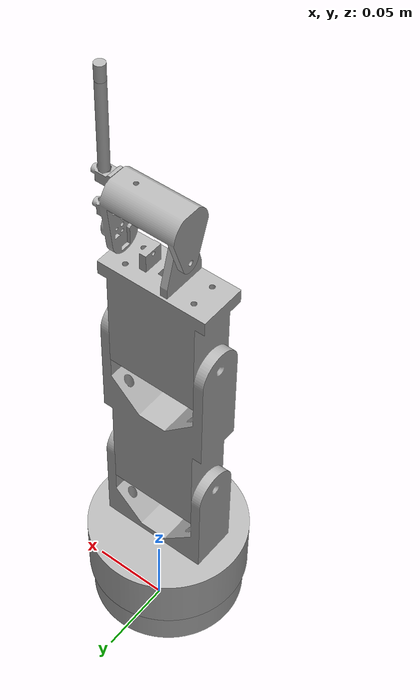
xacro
<?xml version="1.0"?>
<robot xmlns:xacro="http://www.ros.org/wiki/xacro" name="bob_joints">
    <xacro:arg name="initial_positions_file" default="initial_positions.yaml" />

    <!-- Import bob_joints urdf file -->
    <xacro:include filename="$(find bob_joints_description)/urdf/bob_joints.urdf" />

    <!-- Import control_xacro -->
    <xacro:include filename="bob_joints.ros2_control.xacro" />

    <xacro:bob_joints_ros2_control name="FakeSystem" initial_positions_file="$(arg initial_positions_file)"/>

</robot>

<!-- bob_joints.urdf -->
<!-- |    This document was autogenerated by xacro from bob_joints.xacro               | -->
<!-- |    EDITING THIS FILE BY HAND IS NOT RECOMMENDED                                 | -->
<robot name="bob_joints">
    <link name="world"/>
  <joint name="joint_w" type="fixed">
    <parent link="world"/>
    <child link="base_link"/>
  </joint>
  <material name="silver">
    <color rgba="0.700 0.700 0.700 1.000"/>
  </material>
  <transmission name="limb1_to_base_link_tran">
    <type>transmission_interface/SimpleTransmission</type>
    <joint name="limb1_to_base_link">
      <hardwareInterface>hardware_interface/EffortJointInterface</hardwareInterface>
    </joint>
    <actuator name="limb1_to_base_link_actr">
      <hardwareInterface>hardware_interface/EffortJointInterface</hardwareInterface>
      <mechanicalReduction>1</mechanicalReduction>
    </actuator>
  </transmission>
  <transmission name="limb2_to_limb1_tran">
    <type>transmission_interface/SimpleTransmission</type>
    <joint name="limb2_to_limb1">
      <hardwareInterface>hardware_interface/EffortJointInterface</hardwareInterface>
    </joint>
    <actuator name="limb2_to_limb1_actr">
      <hardwareInterface>hardware_interface/EffortJointInterface</hardwareInterface>
      <mechanicalReduction>1</mechanicalReduction>
    </actuator>
  </transmission>
  <transmission name="limb3_to_limb2_tran">
    <type>transmission_interface/SimpleTransmission</type>
    <joint name="limb3_to_limb2">
      <hardwareInterface>hardware_interface/EffortJointInterface</hardwareInterface>
    </joint>
    <actuator name="limb3_to_limb2_actr">
      <hardwareInterface>hardware_interface/EffortJointInterface</hardwareInterface>
      <mechanicalReduction>1</mechanicalReduction>
    </actuator>
  </transmission>
  <transmission name="limb4_to_limb3_tran">
    <type>transmission_interface/SimpleTransmission</type>
    <joint name="limb4_to_limb3">
      <hardwareInterface>hardware_interface/EffortJointInterface</hardwareInterface>
    </joint>
    <actuator name="limb4_to_limb3_actr">
      <hardwareInterface>hardware_interface/EffortJointInterface</hardwareInterface>
      <mechanicalReduction>1</mechanicalReduction>
    </actuator>
  </transmission>
  <transmission name="brush_to_limb4_tran">
    <type>transmission_interface/SimpleTransmission</type>
    <joint name="brush_to_limb4">
      <hardwareInterface>hardware_interface/EffortJointInterface</hardwareInterface>
    </joint>
    <actuator name="brush_to_limb4_actr">
      <hardwareInterface>hardware_interface/EffortJointInterface</hardwareInterface>
      <mechanicalReduction>1</mechanicalReduction>
    </actuator>
  </transmission>
  <gazebo>
    <plugin filename="libgazebo_ros_control.so" name="control"/>
  </gazebo>
  <gazebo reference="base_link">
    <material>Gazebo/Silver</material>
    <mu1>0.2</mu1>
    <mu2>0.2</mu2>
    <self_collide>true</self_collide>
    <gravity>true</gravity>
  </gazebo>
  <gazebo reference="limb1_1">
    <material>Gazebo/Silver</material>
    <mu1>0.2</mu1>
    <mu2>0.2</mu2>
    <self_collide>true</self_collide>
  </gazebo>
  <gazebo reference="limb2_1">
    <material>Gazebo/Silver</material>
    <mu1>0.2</mu1>
    <mu2>0.2</mu2>
    <self_collide>true</self_collide>
  </gazebo>
  <gazebo reference="limb3_1">
    <material>Gazebo/Silver</material>
    <mu1>0.2</mu1>
    <mu2>0.2</mu2>
    <self_collide>true</self_collide>
  </gazebo>
  <gazebo reference="limb4_1">
    <material>Gazebo/Silver</material>
    <mu1>0.2</mu1>
    <mu2>0.2</mu2>
    <self_collide>true</self_collide>
  </gazebo>
  <gazebo reference="brush_1">
    <material>Gazebo/Silver</material>
    <mu1>0.2</mu1>
    <mu2>0.2</mu2>
    <self_collide>true</self_collide>
  </gazebo>
  <link name="base_link">
    <inertial>
      <origin rpy="0 0 0" xyz="0.0006803142090778661 -0.010329455009390021 0.03163382570046437"/>
      <mass value="1.9193144626991494"/>
      <inertia ixx="0.001607" ixy="2e-06" ixz="0.0" iyy="0.001953" iyz="2.2e-05" izz="0.002773"/>
    </inertial>
    <visual>
      <origin rpy="0 0 0" xyz="0 0 0"/>
      <geometry>
        <mesh filename="file:///home/space/ws_moveit/install/bob_joints_description/share/bob_joints_description/meshes/base_link.stl" scale="1 1 1"/>
      </geometry>
      <material name="silver"/>
    </visual>
    <collision>
      <origin rpy="0 0 0" xyz="0 0 0"/>
      <geometry>
        <mesh filename="file:///home/space/ws_moveit/install/bob_joints_description/share/bob_joints_description/meshes/base_link.stl" scale="1 1 1"/>
      </geometry>
    </collision>
  </link>
  <link name="limb1_1">
    <inertial>
      <origin rpy="0 0 0" xyz="-3.974717860263195e-05 6.12616581656053e-07 0.017126004805338477"/>
      <mass value="1.206894590873129"/>
      <inertia ixx="0.001242" ixy="0.0" ixz="3e-06" iyy="0.001509" iyz="-0.0" izz="0.001729"/>
    </inertial>
    <visual>
      <origin rpy="0 0 0" xyz="-0.000497 0.010142 -0.055856"/>
      <geometry>
        <mesh filename="file:///home/space/ws_moveit/install/bob_joints_description/share/bob_joints_description/meshes/limb1_1.stl" scale="1 1 1"/>
      </geometry>
      <material name="silver"/>
    </visual>
    <collision>
      <origin rpy="0 0 0" xyz="-0.000497 0.010142 -0.055856"/>
      <geometry>
        <mesh filename="file:///home/space/ws_moveit/install/bob_joints_description/share/bob_joints_description/meshes/limb1_1.stl" scale="1 1 1"/>
      </geometry>
    </collision>
  </link>
  <link name="limb2_1">
    <inertial>
      <origin rpy="0 0 0" xyz="0.027279852822002917 0.0016072156717585832 0.04366871261710806"/>
      <mass value="0.6598236151248956"/>
      <inertia ixx="0.000974" ixy="-5e-06" ixz="-3.9e-05" iyy="0.00133" iyz="3.5e-05" izz="0.000473"/>
    </inertial>
    <visual>
      <origin rpy="0 0 0" xyz="0.028822 0.010141 -0.13477"/>
      <geometry>
        <mesh filename="file:///home/space/ws_moveit/install/bob_joints_description/share/bob_joints_description/meshes/limb2_1.stl" scale="1 1 1"/>
      </geometry>
      <material name="silver"/>
    </visual>
    <collision>
      <origin rpy="0 0 0" xyz="0.028822 0.010141 -0.13477"/>
      <geometry>
        <mesh filename="file:///home/space/ws_moveit/install/bob_joints_description/share/bob_joints_description/meshes/limb2_1.stl" scale="1 1 1"/>
      </geometry>
    </collision>
  </link>
  <link name="limb3_1">
    <inertial>
      <origin rpy="0 0 0" xyz="0.025873636316636188 0.0025217337529823743 0.023834763710508522"/>
      <mass value="0.4130666909549956"/>
      <inertia ixx="0.000409" ixy="-7e-06" ixz="-1.1e-05" iyy="0.000523" iyz="1.5e-05" izz="0.000188"/>
    </inertial>
    <visual>
      <origin rpy="0 0 0" xyz="0.028822 0.010141 -0.242983"/>
      <geometry>
        <mesh filename="file:///home/space/ws_moveit/install/bob_joints_description/share/bob_joints_description/meshes/limb3_1.stl" scale="1 1 1"/>
      </geometry>
      <material name="silver"/>
    </visual>
    <collision>
      <origin rpy="0 0 0" xyz="0.028822 0.010141 -0.242983"/>
      <geometry>
        <mesh filename="file:///home/space/ws_moveit/install/bob_joints_description/share/bob_joints_description/meshes/limb3_1.stl" scale="1 1 1"/>
      </geometry>
    </collision>
  </link>
  <link name="limb4_1">
    <inertial>
      <origin rpy="0 0 0" xyz="0.028342681879727424 -1.4410099062663745e-05 0.023522306875613797"/>
      <mass value="0.14026966150600653"/>
      <inertia ixx="5.3e-05" ixy="0.0" ixz="-6e-06" iyy="0.0001" iyz="0.0" izz="6.1e-05"/>
    </inertial>
    <visual>
      <origin rpy="0 0 0" xyz="0.009632 0.010611 -0.31044"/>
      <geometry>
        <mesh filename="file:///home/space/ws_moveit/install/bob_joints_description/share/bob_joints_description/meshes/limb4_1.stl" scale="1 1 1"/>
      </geometry>
      <material name="silver"/>
    </visual>
    <collision>
      <origin rpy="0 0 0" xyz="0.009632 0.010611 -0.31044"/>
      <geometry>
        <mesh filename="file:///home/space/ws_moveit/install/bob_joints_description/share/bob_joints_description/meshes/limb4_1.stl" scale="1 1 1"/>
      </geometry>
    </collision>
  </link>
  <link name="brush_1">
    <inertial>
      <origin rpy="0 0 0" xyz="4.3052581448488336e-07 3.897601171289067e-07 0.0050003780918617124"/>
      <mass value="0.0026048711836780623"/>
      <inertia ixx="0.0" ixy="0.0" ixz="0.0" iyy="0.0" iyz="-0.0" izz="0.0"/>
    </inertial>
    <visual>
      <origin rpy="0 0 0" xyz="-0.042646 0.010713 -0.39867"/>
      <geometry>
        <mesh filename="file:///home/space/ws_moveit/install/bob_joints_description/share/bob_joints_description/meshes/brush_1.stl" scale="1 1 1"/>
      </geometry>
      <material name="silver"/>
    </visual>
    <collision>
      <origin rpy="0 0 0" xyz="-0.042646 0.010713 -0.39867"/>
      <geometry>
        <mesh filename="file:///home/space/ws_moveit/install/bob_joints_description/share/bob_joints_description/meshes/brush_1.stl" scale="1 1 1"/>
      </geometry>
    </collision>
  </link>
<joint name="limb1_to_base_link" type="revolute">
    <origin rpy="0 0 0" xyz="0.000497 -0.010142 0.055856"/>
    <parent link="base_link"/>
    <child link="limb1_1"/>
    <axis xyz="-0.0 0.0 1.0"/>
    <limit lower="-1.5708" upper="1.5708" effort="100" velocity="1"/>
  </joint>

  <joint name="limb2_to_limb1" type="revolute">
    <origin rpy="0 0 0" xyz="-0.029319 1e-06 0.078914"/>
    <parent link="limb1_1"/>
    <child link="limb2_1"/>
    <axis xyz="1.0 0.0 -0.0"/>
    <limit lower="-1.5708" upper="1.5708" effort="100" velocity="1"/>
  </joint>

  <joint name="limb3_to_limb2" type="revolute">
    <origin rpy="0 0 0" xyz="0.0 0.0 0.108213"/>
    <parent link="limb2_1"/>
    <child link="limb3_1"/>
    <axis xyz="1.0 0.0 0.0"/>
    <limit lower="-2.3562" upper="0.7854" effort="100" velocity="1"/>
  </joint>

  <joint name="limb4_to_limb3" type="revolute">
    <origin rpy="0 0 0" xyz="0.01919 -0.00047 0.067457"/>
    <parent link="limb3_1"/>
    <child link="limb4_1"/>
    <axis xyz="-1.0 -0.0 -0.0"/>
    <limit lower="-1.5708" upper="1.5708" effort="100" velocity="1"/>
  </joint>

  <joint name="brush_to_limb4" type="fixed">
    <origin rpy="0 0 0" xyz="0.052278 -0.000102 0.08823"/>
    <parent link="limb4_1"/>
    <child link="brush_1"/>
    <axis xyz="-0.0 0.0 1.0"/>
  </joint>
</robot>
